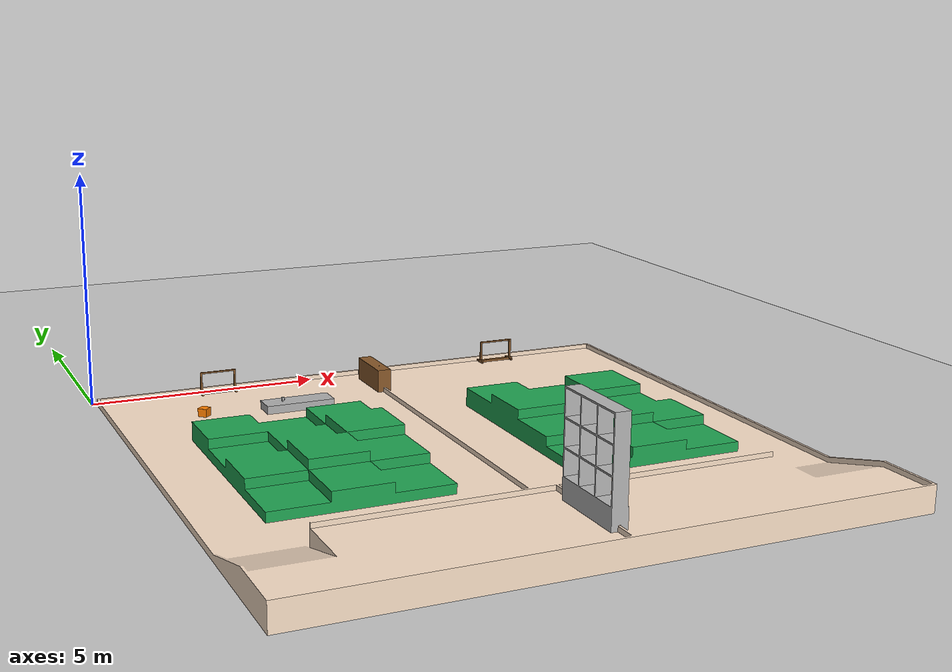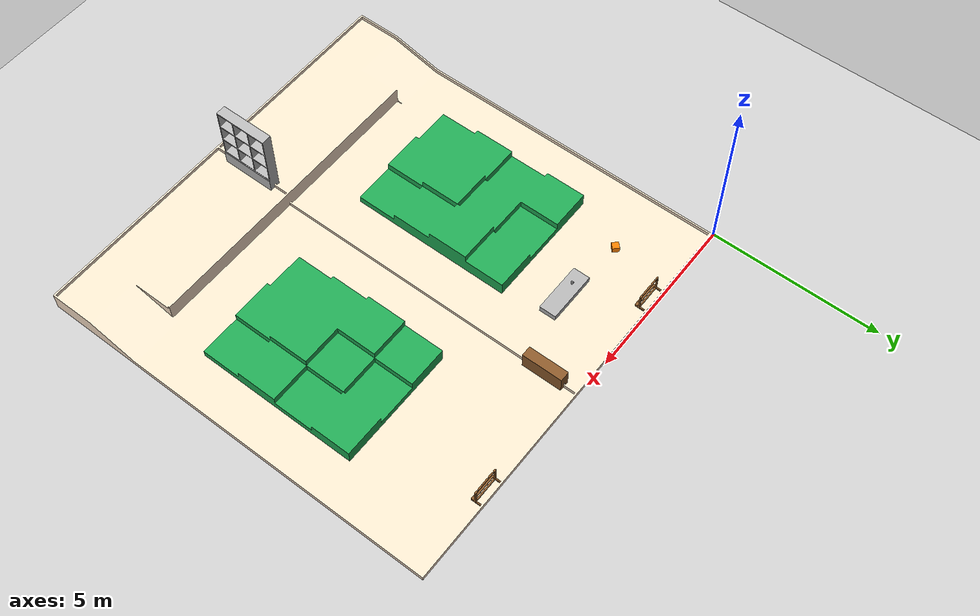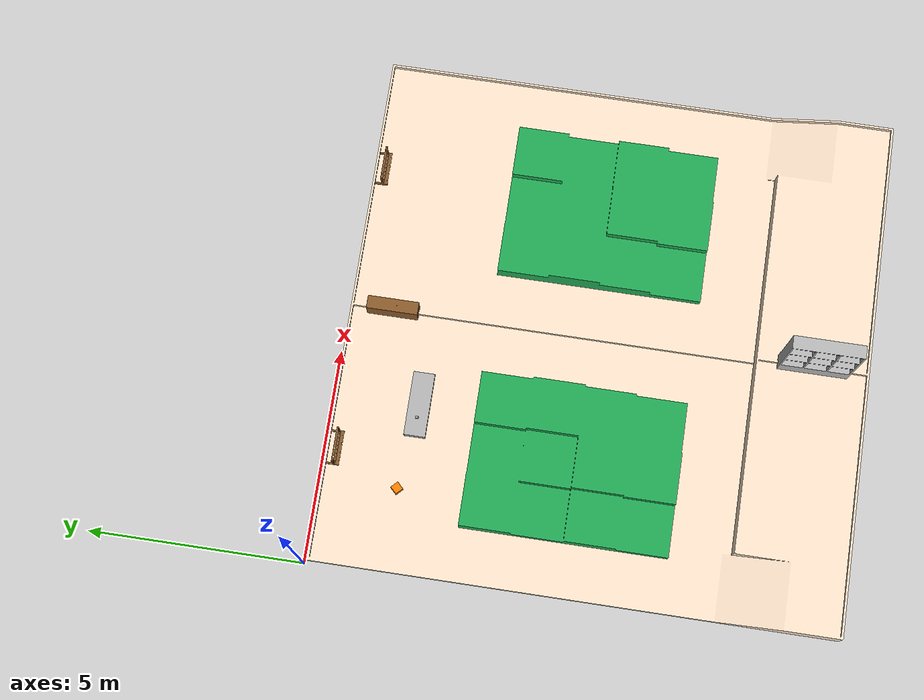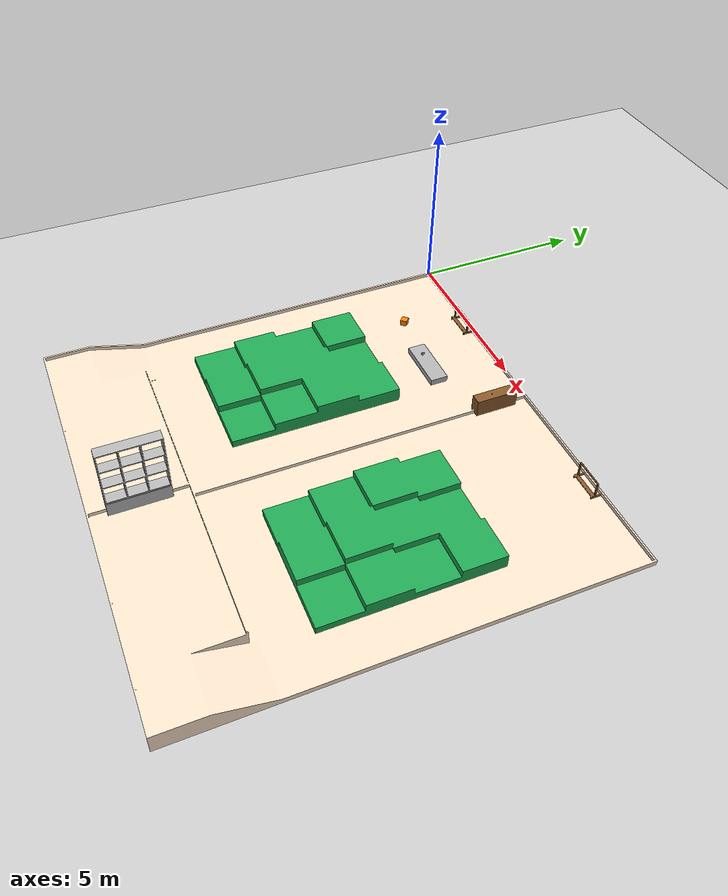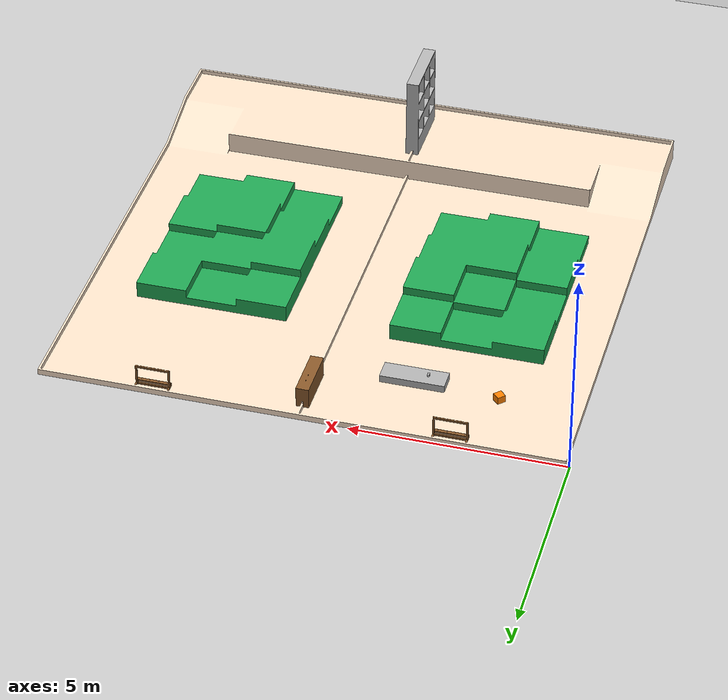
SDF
<sdf version="1.6">
 <world name="abu_stadium_world">
  <scene><shadows>0</shadows><grid>0</grid></scene>
  <physics type="ode">
   <max_step_size>0.002</max_step_size>
   <real_time_factor>1.0</real_time_factor>
   <real_time_update_rate>500</real_time_update_rate>
  </physics>
  <include><uri>model://sun</uri></include>
  <include><uri>model://ground_plane</uri></include>
  <include><uri>model://abu_stadium</uri><pose>0 0 -1.23 1.5708 0 0</pose></include>
  <model name="docking_box">
   <pose>2 -1.8 0.1 0 0 0.7854</pose>
   <static>true</static>
   <link name="link">
    <collision name="collision"><geometry><box><size>0.2 0.2 0.2</size></box></geometry></collision>
    <visual name="visual">
     <geometry><box><size>0.2 0.2 0.2</size></box></geometry>
     <material><ambient>1 0.5 0 1</ambient><diffuse>1 0.5 0 1</diffuse></material>
    </visual>
   </link>
  </model>
  <model name="new_support_box">
   <pose>4.0 -2.0 0.1 0 0 0</pose>
   <static>true</static>
   <link name="link">
    <collision name="collision"><geometry><box><size>1.5 0.5 0.2</size></box></geometry></collision>
    <visual name="visual">
     <geometry><box><size>1.5 0.5 0.2</size></box></geometry>
     <material><ambient>0.7 0.7 0.7 1</ambient><diffuse>0.7 0.7 0.7 1</diffuse></material>
    </visual>
   </link>
  </model>
  <include><uri>model://fist</uri><pose>3.7 -2.0 0.251 0 -3.1416 1.5708</pose></include>
 </world>
</sdf>

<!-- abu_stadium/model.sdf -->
<sdf version="1.6">
  <model name="abu_stadium">
    <static>true</static>
    <link name="stadium_link">
      <pose>0 0 0 0 0 0</pose>

      <!-- BASE -->
      <visual name="base_visual">
        <geometry>
          <mesh>
            <uri>model://abu_stadium/meshes/base_1.stl</uri>
            <scale>0.001 0.001 0.001</scale>
          </mesh>
        </geometry>
        <material>
          <ambient>1.0 0.898 0.8 1</ambient>
          <diffuse>1.0 0.898 0.8 1</diffuse>
          <specular>0.1 0.1 0.1 1</specular>
        </material>
      </visual>

      <!-- FOREST 1 -->
      <visual name="forest_visual">
        <geometry>
          <mesh>
            <uri>model://abu_stadium/meshes/forest_1.stl</uri>
            <scale>0.001 0.001 0.001</scale>
          </mesh>
        </geometry>
        <material>
          <ambient>0.13 0.66 0.33 1</ambient>
          <diffuse>0.13 0.66 0.33 1</diffuse>
        </material>
      </visual>

      <!-- FOREST 2 -->
      <visual name="forest2_visual">
        <geometry>
          <mesh>
            <uri>model://abu_stadium/meshes/forest2_1.stl</uri>
            <scale>0.001 0.001 0.001</scale>
          </mesh>
        </geometry>
        <material>
          <ambient>0.13 0.66 0.33 1</ambient>
          <diffuse>0.13 0.66 0.33 1</diffuse>
        </material>
      </visual>

      <!-- SPEARHEAD RACK -->
      <visual name="spearhead_rack_visual">
        <geometry>
          <mesh>
            <uri>model://abu_stadium/meshes/spearhead_rack_1.stl</uri>
            <scale>0.001 0.001 0.001</scale>
          </mesh>
        </geometry>
        <material>
          <ambient>0.545 0.353 0.169 1</ambient>
          <diffuse>0.545 0.353 0.169 1</diffuse>
        </material>
      </visual>

      <!-- STAFF RACK 1 -->
      <visual name="staff_rack_1_visual">
        <geometry>
          <mesh>
            <uri>model://abu_stadium/meshes/staff_rack_1.stl</uri>
            <scale>0.001 0.001 0.001</scale>
          </mesh>
        </geometry>
        <material>
          <ambient>0.545 0.353 0.169 1</ambient>
          <diffuse>0.545 0.353 0.169 1</diffuse>
        </material>
      </visual>

      <!-- STAFF RACK 2 -->
      <visual name="staff_rack_2_visual">
        <geometry>
          <mesh>
            <uri>model://abu_stadium/meshes/staff_rack_2.stl</uri>
            <scale>0.001 0.001 0.001</scale>
          </mesh>
        </geometry>
        <material>
          <ambient>0.545 0.353 0.169 1</ambient>
          <diffuse>0.545 0.353 0.169 1</diffuse>
        </material>
      </visual>

      <!-- TIC TAC TOE RACK (ปล่อย default หรือแก้เพิ่มได้) -->
      <visual name="tic_tac_toe_rack_visual">
        <geometry>
          <mesh>
            <uri>model://abu_stadium/meshes/tic_tac_toe_rack_1.stl</uri>
            <scale>0.001 0.001 0.001</scale>
          </mesh>
        </geometry>
      </visual>

      <!-- COLLISION -->
      <collision name="base_collision">
        <geometry>
          <mesh>
            <uri>model://abu_stadium/meshes/base_1.stl</uri>
            <scale>0.001 0.001 0.001</scale>
          </mesh>
        </geometry>
      </collision>

      <collision name="forest_collision">
        <geometry>
          <mesh>
            <uri>model://abu_stadium/meshes/forest_1.stl</uri>
            <scale>0.001 0.001 0.001</scale>
          </mesh>
        </geometry>
      </collision>

      <collision name="forest2_collision">
        <geometry>
          <mesh>
            <uri>model://abu_stadium/meshes/forest2_1.stl</uri>
            <scale>0.001 0.001 0.001</scale>
          </mesh>
        </geometry>
      </collision>

      <collision name="spearhead_rack_collision">
        <geometry>
          <mesh>
            <uri>model://abu_stadium/meshes/spearhead_rack_1.stl</uri>
            <scale>0.001 0.001 0.001</scale>
          </mesh>
        </geometry>
      </collision>

      <collision name="staff_rack_1_collision">
        <geometry>
          <mesh>
            <uri>model://abu_stadium/meshes/staff_rack_1.stl</uri>
            <scale>0.001 0.001 0.001</scale>
          </mesh>
        </geometry>
      </collision>

      <collision name="staff_rack_2_collision">
        <geometry>
          <mesh>
            <uri>model://abu_stadium/meshes/staff_rack_2.stl</uri>
            <scale>0.001 0.001 0.001</scale>
          </mesh>
        </geometry>
      </collision>

      <collision name="tic_tac_toe_rack_collision">
        <geometry>
          <mesh>
            <uri>model://abu_stadium/meshes/tic_tac_toe_rack_1.stl</uri>
            <scale>0.001 0.001 0.001</scale>
          </mesh>
        </geometry>
      </collision>

    </link>
  </model>
</sdf>

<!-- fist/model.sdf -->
<sdf version="1.6">
  <model name="fist">
    <static>false</static>
    <link name="link">
      <inertial>
        <mass>0.2</mass>
        <inertia>
          <ixx>0.0001</ixx>
          <ixy>0</ixy>
          <ixz>0</ixz>
          <iyy>0.0001</iyy>
          <iyz>0</iyz>
          <izz>0.0001</izz>
        </inertia>
      </inertial>
      <collision name="collision">
        <geometry>
          <mesh>
            <uri>model://fist/meshes/Fist.stl</uri>
            <scale>0.001 0.001 0.001</scale>
          </mesh>
        </geometry>
      </collision>
      <visual name="visual">
        <geometry>
          <mesh>
            <uri>model://fist/meshes/Fist.stl</uri>
            <scale>0.001 0.001 0.001</scale>
          </mesh>
        </geometry>
      </visual>
    </link>
  </model>
</sdf>
